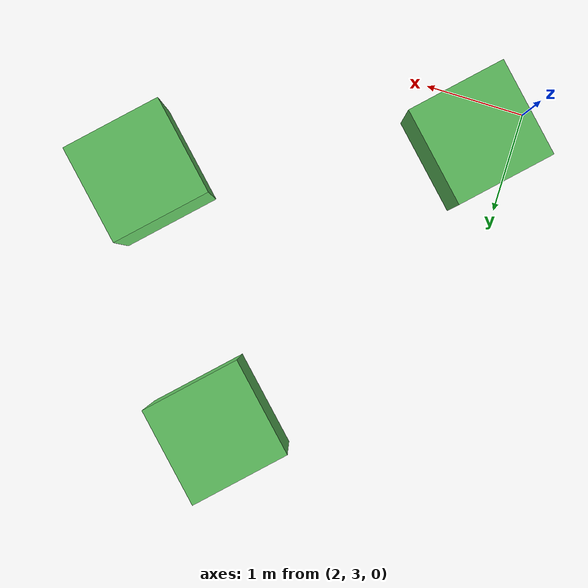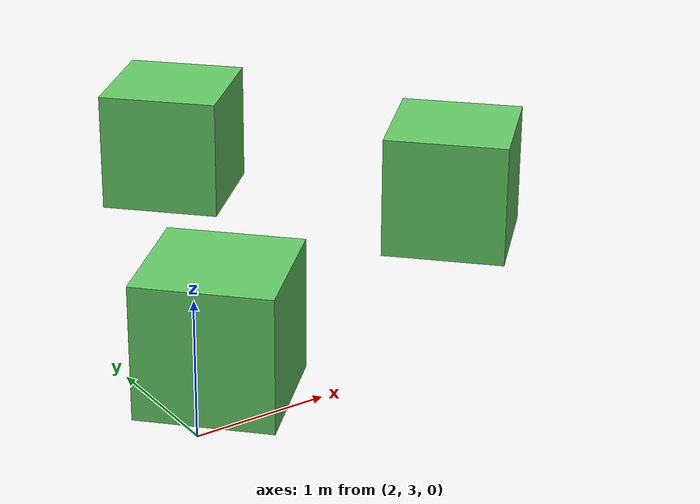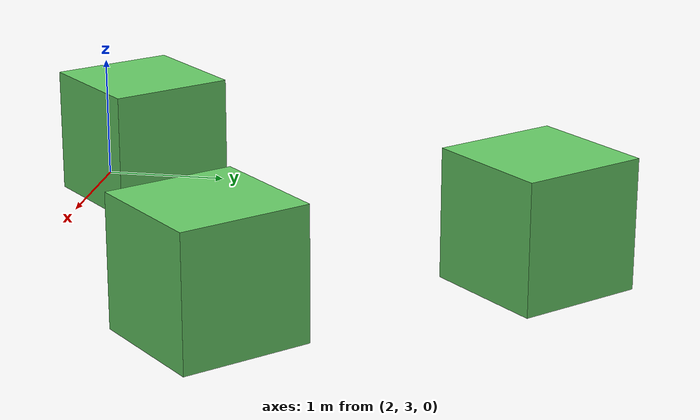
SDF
<?xml version='1.0' encoding='utf-8'?>
<sdf version="1.6">
  <model name="obstacles_sparse">
    <static>true</static>
    <pose>4 4 0.5 0 0 0.785</pose>

    <link name="box_1">
      <pose>-1.5 0.7 0 0 0 0</pose>
      <collision name="c1"><geometry><box><size>1 1 1</size></box></geometry></collision>
      <visual name="v1"><geometry><box><size>1 1 1</size></box></geometry>
        <material><ambient>0.4 0.8 0.4 1</ambient><diffuse>0.4 0.8 0.4 1</diffuse></material>
      </visual>
    </link>

    <link name="box_2">
      <pose>1.5 -0.5 0 0 0 0</pose>
      <collision name="c2"><geometry><box><size>1 1 1</size></box></geometry></collision>
      <visual name="v2"><geometry><box><size>1 1 1</size></box></geometry>
        <material><ambient>0.4 0.8 0.4 1</ambient><diffuse>0.4 0.8 0.4 1</diffuse></material>
      </visual>
    </link>

    <link name="box_3">
      <pose>2.0 2.0 0 0 0 0</pose>
      <collision name="c3"><geometry><box><size>1 1 1</size></box></geometry></collision>
      <visual name="v3"><geometry><box><size>1 1 1</size></box></geometry>
        <material><ambient>0.4 0.8 0.4 1</ambient><diffuse>0.4 0.8 0.4 1</diffuse></material>
      </visual>
    </link>
  </model>
</sdf>
